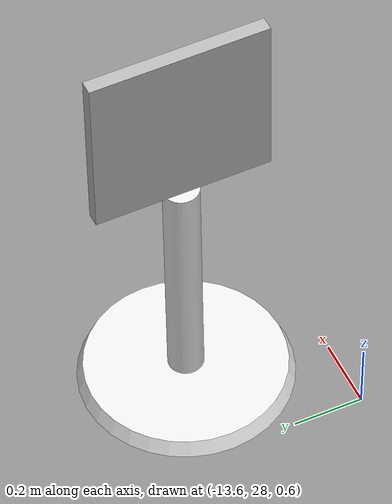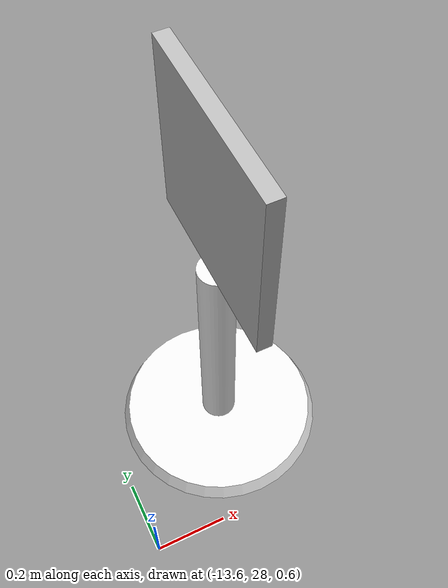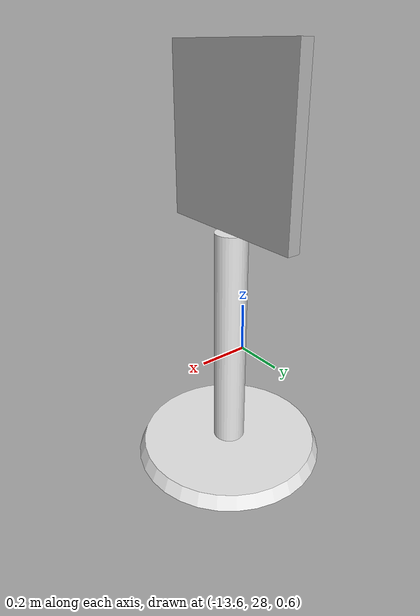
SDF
<sdf version="1.7">
 <world name="default">
  <model name="sign_board_yaya_gecidi">
   <link name="link_0">
    <inertial>
     <mass>1</mass>
     <inertia>
      <ixx>0.166667</ixx>
      <ixy>0</ixy>
      <ixz>0</ixz>
      <iyy>0.166667</iyy>
      <iyz>0</iyz>
      <izz>0.166667</izz>
     </inertia>
    </inertial>
    <visual name="visual">
     <geometry>
      <mesh>
       <uri>/home/davut/otonomus_ws/src/self_driving_car_pkg/models/sign_board_yaya_gecidi/meshes/sign_stand.obj</uri>
       <scale>0.25 0.25 0.25</scale>
      </mesh>
     </geometry>
     <material>
      <lighting>1</lighting>
      <script><uri>file://media/materials/scripts/gazebo.material</uri><name>Gazebo/White</name></script>
      <shader type="pixel"/>
      <emissive>0 0 0 1</emissive>
     </material>
    </visual>
    <collision name="collision">
     <geometry>
      <mesh>
       <uri>/home/davut/otonomus_ws/src/self_driving_car_pkg/models/sign_board_yaya_gecidi/meshes/sign_stand.obj</uri>
       <scale>0.25 0.25 0.25</scale>
      </mesh>
     </geometry>
     <surface>
      <friction>
       <ode><mu>1</mu><mu2>1</mu2><fdir1>0 0 0</fdir1><slip1>0</slip1><slip2>0</slip2></ode>
       <torsional>
        <coefficient>1</coefficient>
        <patch_radius>0</patch_radius>
        <surface_radius>0</surface_radius>
        <use_patch_radius>1</use_patch_radius>
        <ode><slip>0</slip></ode>
       </torsional>
      </friction>
      <bounce><restitution_coefficient>0</restitution_coefficient><threshold>1e+06</threshold></bounce>
      <contact>
       <collide_without_contact>0</collide_without_contact>
       <collide_without_contact_bitmask>1</collide_without_contact_bitmask>
       <collide_bitmask>1</collide_bitmask>
       <ode>
        <soft_cfm>0</soft_cfm>
        <soft_erp>0.2</soft_erp>
        <kp>1e+13</kp>
        <kd>1</kd>
        <max_vel>0.01</max_vel>
        <min_depth>0</min_depth>
       </ode>
       <bullet>
        <split_impulse>1</split_impulse>
        <split_impulse_penetration_threshold>-0.01</split_impulse_penetration_threshold>
        <soft_cfm>0</soft_cfm>
        <soft_erp>0.2</soft_erp>
        <kp>1e+13</kp>
        <kd>1</kd>
       </bullet>
      </contact>
     </surface>
    </collision>
   </link>
   <link name="link_1">
    <inertial>
     <mass>1</mass>
     <inertia>
      <ixx>0.166667</ixx>
      <ixy>0</ixy>
      <ixz>0</ixz>
      <iyy>0.166667</iyy>
      <iyz>0</iyz>
      <izz>0.166667</izz>
     </inertia>
    </inertial>
    <visual name="visual">
     <geometry>
      <mesh>
       <uri>/home/davut/otonomus_ws/src/self_driving_car_pkg/models/sign_board_yaya_gecidi/meshes/sign_board.obj</uri>
       <scale>0.25 0.25 0.25</scale>
      </mesh>
     </geometry>
     <material>
      <script>
       <uri>/home/davut/otonomus_ws/src/self_driving_car_pkg/models/sign_board_yaya_gecidi/materials/scripts</uri>
       <uri>/home/davut/otonomus_ws/src/self_driving_car_pkg/models/sign_board_yaya_gecidi/materials/textures</uri>
       <name>sign_board_yaya_gecidi/Diffuse</name>
      </script>
     </material>
    </visual>
    <collision name="collision">
     <geometry>
      <mesh>
       <uri>/home/davut/otonomus_ws/src/self_driving_car_pkg/models/sign_board_yaya_gecidi/meshes/sign_board.obj</uri>
       <scale>0.25 0.25 0.25</scale>
      </mesh>
     </geometry>
     <surface>
      <friction>
       <ode><mu>1</mu><mu2>1</mu2><fdir1>0 0 0</fdir1><slip1>0</slip1><slip2>0</slip2></ode>
       <torsional>
        <coefficient>1</coefficient>
        <patch_radius>0</patch_radius>
        <surface_radius>0</surface_radius>
        <use_patch_radius>1</use_patch_radius>
        <ode><slip>0</slip></ode>
       </torsional>
      </friction>
      <bounce><restitution_coefficient>0</restitution_coefficient><threshold>1e+06</threshold></bounce>
      <contact>
       <collide_without_contact>0</collide_without_contact>
       <collide_without_contact_bitmask>1</collide_without_contact_bitmask>
       <collide_bitmask>1</collide_bitmask>
       <ode>
        <soft_cfm>0</soft_cfm>
        <soft_erp>0.2</soft_erp>
        <kp>1e+13</kp>
        <kd>1</kd>
        <max_vel>0.01</max_vel>
        <min_depth>0</min_depth>
       </ode>
       <bullet>
        <split_impulse>1</split_impulse>
        <split_impulse_penetration_threshold>-0.01</split_impulse_penetration_threshold>
        <soft_cfm>0</soft_cfm>
        <soft_erp>0.2</soft_erp>
        <kp>1e+13</kp>
        <kd>1</kd>
       </bullet>
      </contact>
     </surface>
    </collision>
   </link>
   <joint name="link_0_JOINT_0" type="fixed">
    <parent>link_0</parent>
    <child>link_1</child>
    <physics>
     <ode><limit><cfm>0</cfm><erp>0.2</erp></limit><suspension><cfm>0</cfm><erp>0.2</erp></suspension></ode>
    </physics>
   </joint>
   <static>1</static>
   <pose>-13.2454 28.3557 0.548747 1.55402 -0 0</pose>
  </model>
 </world>
</sdf>
